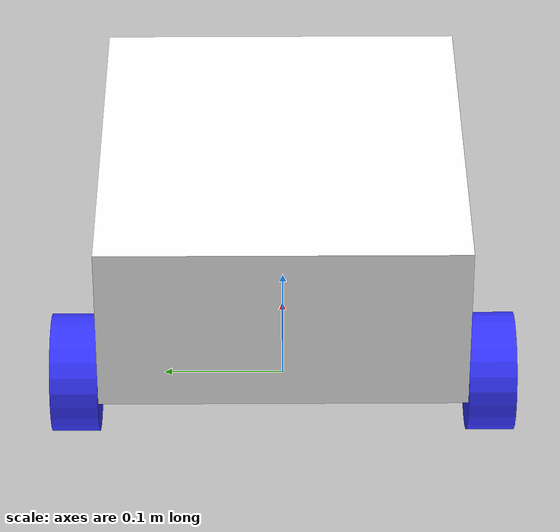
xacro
<?xml version="1.0"?>
<robot xmlns:xacro="https://www.ros.org/wiki/xacro" name="robot">

    <material name="white">
        <color rgba="1 1 1 1"/>
    </material>

    <material name="orange">
        <color rgba="1 0.3 0.1 1"/>
    </material>

    <material name="blue">
        <color rgba="0.2 0.2 1 1"/>
    </material>

    <material name="black">
        <color rgba="0 0 0 1"/>
    </material>

    <!-- BASE LINK -->

    <link name="base_link">

  </link>

    <!-- CHASSIS LINK -->

    <joint name="chassis_joint" type="fixed">
        <parent link="base_link"/>
        <child link="chassis"/>
        <origin xyz="0.1 0 0"/>
    </joint>

    <link name="chassis">
        <visual>
            <origin xyz="0.03 0 0.075" rpy="0 0 0"/>
            <geometry>
                <box size="0.35 0.31 0.15"/>
            </geometry>
            <material name="white"/>
        </visual>

        <collision>
            <origin xyz="0.15 0 0.075" rpy="0 0 0"/>
            <geometry>
                <box size="0.35 0.31 0.15"/>
            </geometry>
            <material name="white"/>
        </collision>
        <inertial>
      <mass value="5.0"/>
      <inertia ixx="0.02" ixy="0" ixz="0" iyy="0.02" iyz="0" izz="0.02"/>
    </inertial>
    </link>

    <!-- LEFT WHEEL LINK -->

    <joint name="left_wheel_joint" type="continuous">
        <parent link="base_link"/>
        <child link="left_wheel"/>
        <origin xyz="0 0.175 0" rpy="1.5708 0 0"/> <!-- 1.5708 rad is equivalent to pi/2 -->
        <axis xyz="0 0 1"/>
    </joint>

    <link name="left_wheel">
        <visual>
            <geometry>
                <cylinder radius="0.05" length="0.04"/>
            </geometry>
            <material name="blue"/>
        </visual>
        <collision>
            <geometry>
                <cylinder radius="0.05" length="0.04"/>
            </geometry>
            <material name="blue"/>
        </collision>
        <inertial>
      <mass value="0.5"/>
      <inertia ixx="0.02" ixy="0" ixz="0" iyy="0.02" iyz="0" izz="0.02"/>
    </inertial>
    </link>

    <!-- RIGHT WHEEL LINK -->

    <joint name="right_wheel_joint" type="continuous">
        <parent link="base_link"/>
        <child link="right_wheel"/>
        <origin xyz="0 -0.175 0" rpy="-1.5708 0 0"/> <!-- -1.5708 rad is equivalent to -pi/2 -->
        <axis xyz="0 0 -1"/>
    </joint>

    <link name="right_wheel">
        <visual>
            <geometry>
                <cylinder radius="0.05" length="0.04"/>
            </geometry>
            <material name="blue"/>
        </visual>
        <collision>
            <geometry>
                <cylinder radius="0.05" length="0.04"/>
            </geometry>
            <material name="blue"/>
        </collision>
        <inertial>
      <mass value="0.5"/>
      <inertia ixx="0.02" ixy="0" ixz="0" iyy="0.02" iyz="0" izz="0.02"/>
    </inertial>
    </link>

    <!-- CASTER WHEEL LINK -->

    <joint name="caster_wheel_joint" type="fixed">
        <parent link="base_link"/>
        <child link="caster_wheel"/>
        <origin xyz="0.24 0 0"/>
    </joint>

    <link name="caster_wheel">
        <visual>
            <geometry>
                <sphere radius="0.05"/>
            </geometry>
            <material name="black"/>
        </visual>
        <collision>
            <geometry>
                <sphere radius="0.05"/>
            </geometry>
            <material name="black"/>
        </collision>
        <inertial>
      <mass value="0.5"/>
      <inertia ixx="0.02" ixy="0" ixz="0" iyy="0.02" iyz="0" izz="0.02"/>
    </inertial>
    </link>
    <gazebo>
    <plugin name="differential_drive_controller" filename="libgazebo_ros_diff_drive.so">
      <ros>
        <namespace>/robot</namespace>
        <remapFrom>cmd_vel</remapFrom> <remapTo>/cmd_vel</remapTo>
      </ros>
      <leftJoint>left_wheel_joint</leftJoint>
      <rightJoint>right_wheel_joint</rightJoint>
      <wheelSeparation>0.3</wheelSeparation>
      <wheelDiameter>0.1</wheelDiameter>
      <torque>10</torque>
    </plugin>
    <plugin name="gazebo_ros_lidar_plugin" filename="libgazebo_ros_lidar.so">
      <ros>
        <namespace>/robot</namespace>
        <remapFrom>scan</remapFrom> <remapTo>/scan</remapTo>
      </ros>
      <frameName>lidar_link</frameName>
    </plugin>
  </gazebo>
</robot>
